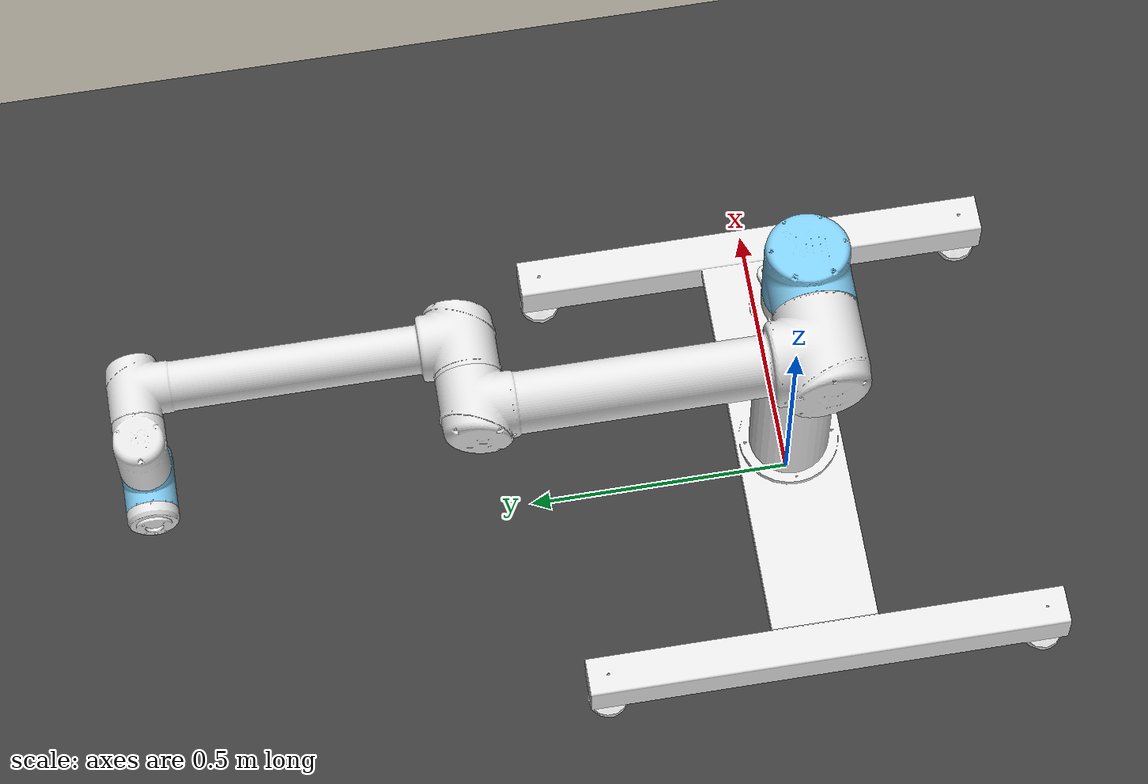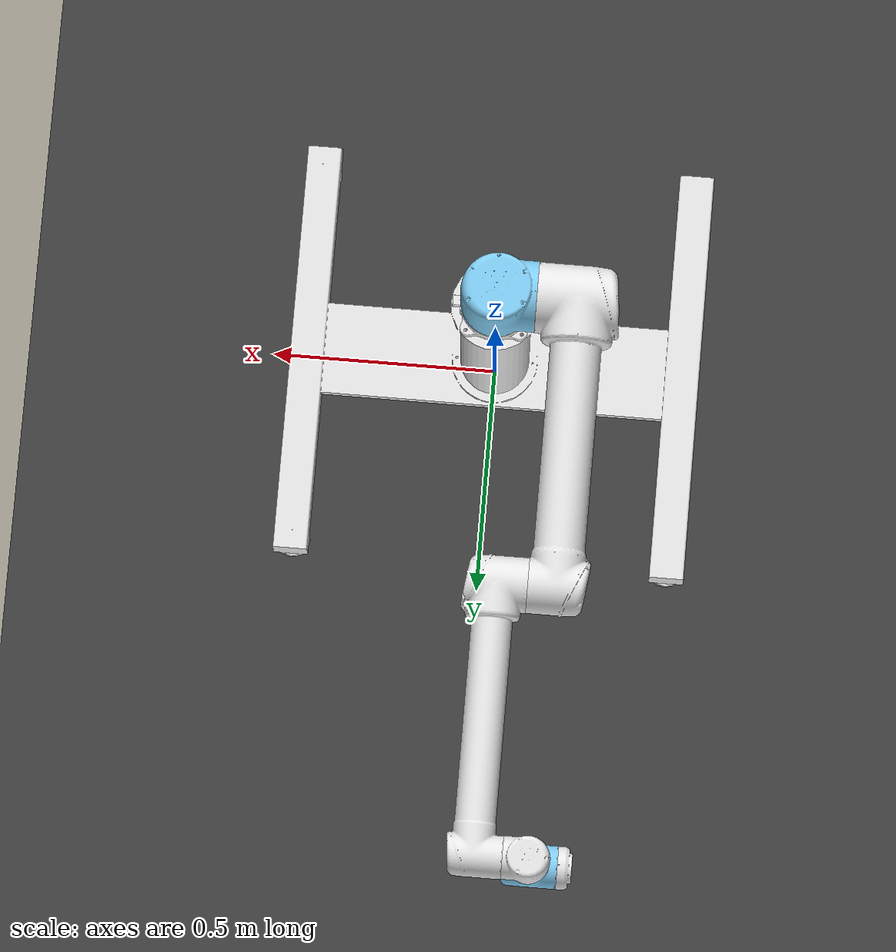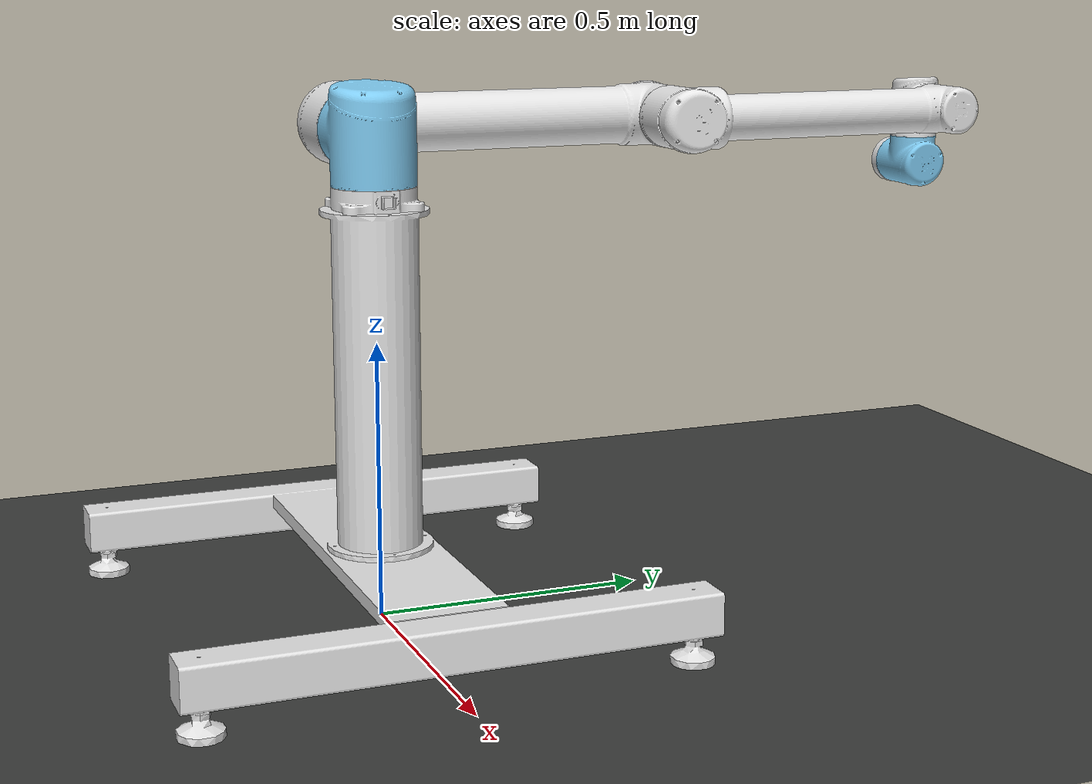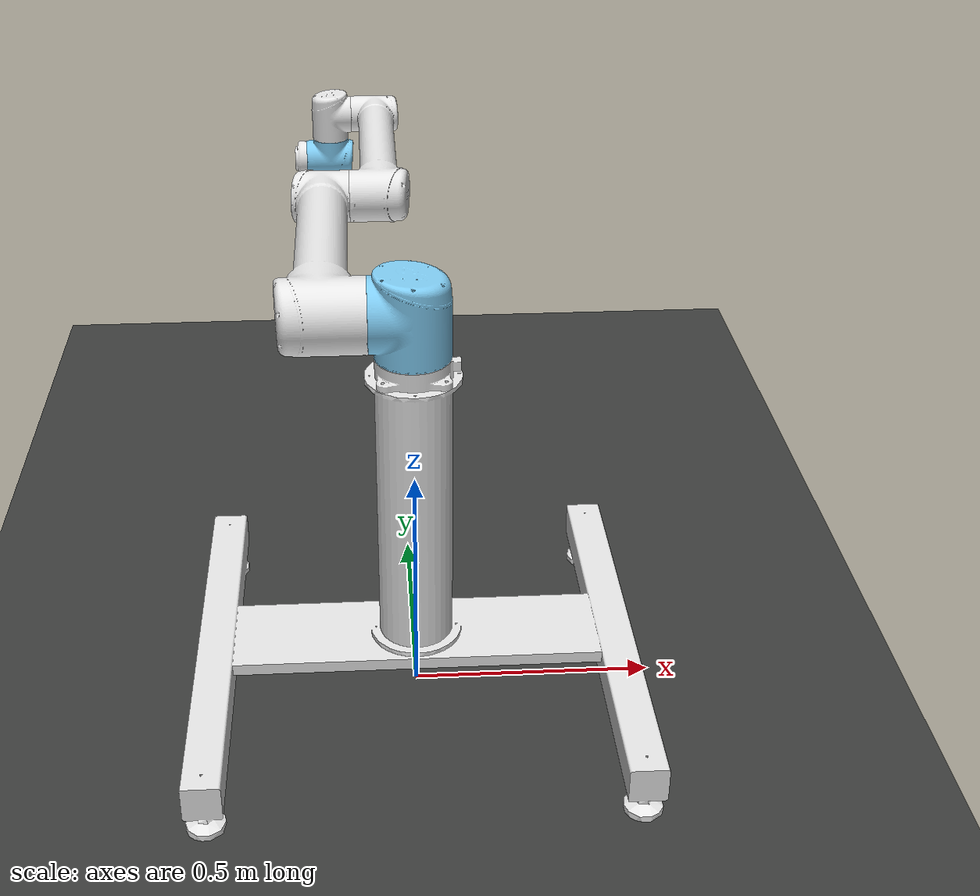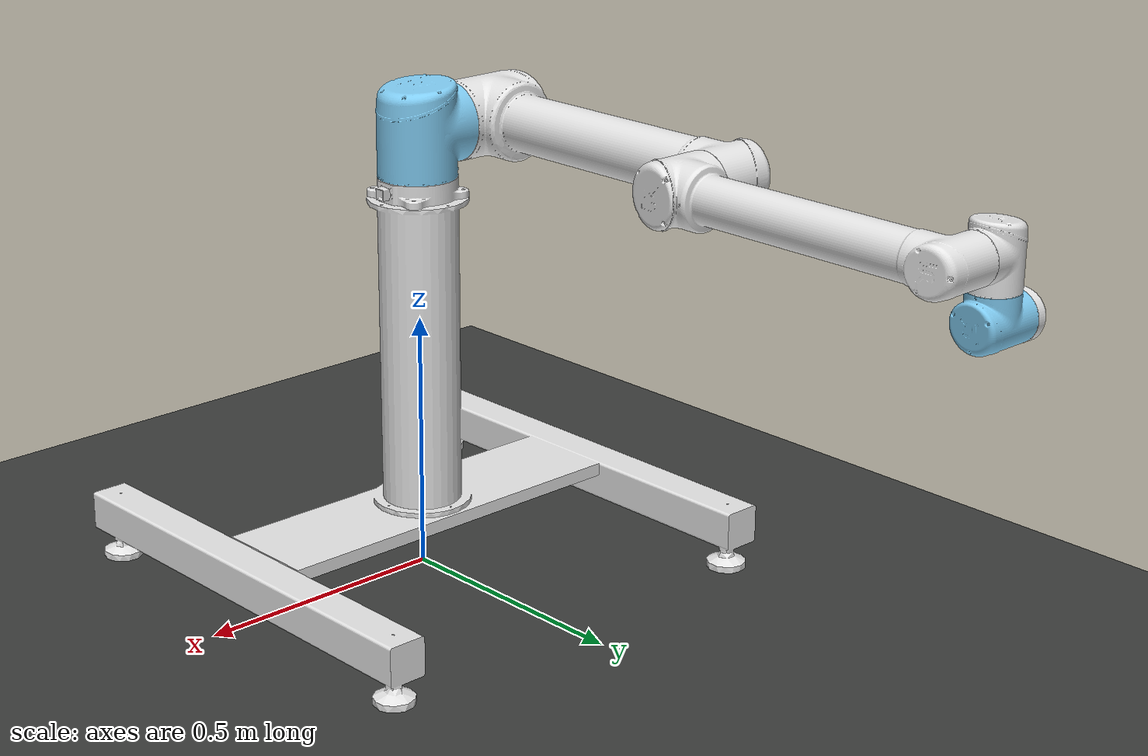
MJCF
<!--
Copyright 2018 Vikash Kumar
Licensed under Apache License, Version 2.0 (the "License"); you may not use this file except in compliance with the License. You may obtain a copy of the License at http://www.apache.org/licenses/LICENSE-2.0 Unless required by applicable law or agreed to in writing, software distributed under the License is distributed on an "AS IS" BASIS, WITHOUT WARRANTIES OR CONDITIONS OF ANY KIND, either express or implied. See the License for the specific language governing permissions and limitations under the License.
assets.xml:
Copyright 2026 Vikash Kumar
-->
<mujoco model="ur10">

    <include file="assets/assets.xml"/>

    <asset>
        <texture name="ur_groundplane" type="2d" builtin="checker" rgb1=".25 .26 .25"
          rgb2=".22 .22 .22" width="100" height="100" mark="none" markrgb=".8 .8 .8"/>
        <material name="ur_MatGnd" texture="ur_groundplane"  texrepeat="5 5" specular="1" shininess=".3" reflectance="0.00001"/>

        <mesh name="ur_pedestal" file="meshes/pedestal.stl" scale='.001 .001 .001'/>
    </asset>

    <worldbody>

				<light directional="false" cutoff="40" diffuse=".3 .3 .35" specular=".1 .1 .1" pos="1 .3 5" dir="-1 -.1 -5 "/>

				<!-- ======= Ground ======= -->
				<geom name="ground" type="plane" pos="0 0 0" material="ur_MatGnd" size="5 5 2" contype="1" conaffinity="1"/>
				<geom class="ur_viz" name='ur_pedestal' pos='0 0 0' type='mesh' mesh='ur_pedestal' euler='0 0 0'/>
				<frame euler="0 0 1.57" pos="0 0 .74">
						<include file="assets/chain.xml"/>
				</frame>
    </worldbody>

</mujoco>

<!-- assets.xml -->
<mujocoinclude>
    <compiler angle="radian"/>
    <size njmax="500" nconmax="100" />

    <visual>
        <map fogstart="1.5" fogend="4" force="0.1"/>
        <quality shadowsize="4096"/>
    </visual>

    <asset>
        <mesh name="ur_base" file="../../ur_sim/ur10/meshes/base.stl" />
        <mesh name="ur_shoulder" file="../../ur_sim/ur10/meshes/shoulder.stl" />
        <mesh name="ur_upperarm" file="../../ur_sim/ur10/meshes/upperarm.stl" />
        <mesh name="ur_forearm" file="../../ur_sim/ur10/meshes/forearm.stl" />
        <mesh name="ur_wrist1" file="../../ur_sim/ur10/meshes/wrist1.stl" />
        <mesh name="ur_wrist2" file="../../ur_sim/ur10/meshes/wrist2.stl" />
        <mesh name="ur_wrist3" file="../../ur_sim/ur10/meshes/wrist3.stl" />
        <mesh name="ur_simple_base" file="../../ur_sim/ur10/meshes/simple_base.stl" />
        <mesh name="ur_simple_shoulder" file="../../ur_sim/ur10/meshes/simple_shoulder.stl" />
        <mesh name="ur_simple_upperarm" file="../../ur_sim/ur10/meshes/simple_upperarm.stl" />
        <mesh name="ur_simple_forearm" file="../../ur_sim/ur10/meshes/simple_forearm.stl" />
        <mesh name="ur_simple_wrist1" file="../../ur_sim/ur10/meshes/simple_wrist1.stl" />
        <mesh name="ur_simple_wrist2" file="../../ur_sim/ur10/meshes/simple_wrist2.stl" />
        <mesh name="ur_simple_wrist3" file="../../ur_sim/ur10/meshes/simple_wrist3.stl" />

        <material name="ur_MatColl" specular="1" shininess=".3" reflectance="0.5" rgba=".4 .5 .6 1"/>
        <material name="ur_MatViz" specular="1" shininess=".1" reflectance="0.5" rgba=".9 .9 .9 1"/>
    </asset>

	<default>
        <default class="ur">
    		<joint limited="true" damping="50" armature=".001" margin="0.01" frictionloss="100"/>
            <general biastype="affine" ctrlrange="-6.2831 6.2831"/>
            <default class="ur_viz">
                <geom material="ur_MatViz" contype="0" conaffinity="0" group="1" type="mesh"/>
            </default>
            <default class="ur_coll">
                <geom material="ur_MatColl" contype="0" conaffinity="1" group="4" type="mesh"/>
            </default>
            <default class="ur10_base">
                <general gainprm="5000" biasprm="0 -5000 -500" forcerange="-330 330"/>
            </default>
            <default class="ur10_elbow">
                <general gainprm="1000" biasprm="0 -1000 -100" forcerange="-150 150"/>
            </default>
            <default class="ur10_wrist">
                <general gainprm="500" biasprm="0 -500 -100" forcerange="-56 56"/>
            </default>
        </default>
	</default>

    <actuator>
		<general class="ur10_base"  name="shoulder_pan"  joint="shoulder_pan_joint"/>
		<general class="ur10_base"  name="shoulder_lift" joint="shoulder_lift_joint"/>
		<general class="ur10_elbow" name="elbow"         joint="elbow_joint"/>
		<general class="ur10_wrist" name="wrist_1"       joint="wrist_1_joint"/>
		<general class="ur10_wrist" name="wrist_2"       joint="wrist_2_joint"/>
		<general class="ur10_wrist" name="wrist_3"       joint="wrist_3_joint"/>
	</actuator>

    <sensor>
        <jointpos joint="shoulder_pan_joint"     name="shoulder_pan_pos"/>
        <jointpos joint="shoulder_lift_joint"    name="shoulder_lift_pos"/>
        <jointpos joint="elbow_joint"            name="elbow_pos"/>
        <jointpos joint="wrist_1_joint"          name="wrist_1_pos"/>
        <jointpos joint="wrist_2_joint"          name="wrist_2_pos"/>
        <jointpos joint="wrist_3_joint"          name="wrist_3_pos"/>
    </sensor>

</mujocoinclude>

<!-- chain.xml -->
<mujocoinclude>

<body name="base_link" euler="0 0 0" pos="0 0 0" childclass="ur">
    <inertial pos="0 0 0" quat="0.5 0.5 -0.5 0.5" mass="4" diaginertia="0.01125 0.00610633 0.00610633"/>
    <geom class="ur_viz" mesh="ur_base"/>
    <geom class="ur_coll" mesh="ur_simple_base"/>
    <body name="shoulder_link" pos="0 0 0.1273">
        <inertial pos="0 0 0" mass="7.778" diaginertia="0.0314743 0.0314743 0.0218756"/>
        <joint name="shoulder_pan_joint" pos="0 0 0" axis="0 0 1" limited="true" range="-6.28319 6.28319"/>
        <geom class="ur_viz" mesh="ur_shoulder" rgba=".5 .8 .95 1"/>
        <geom class="ur_coll" mesh="ur_simple_shoulder"/>
        <body name="upper_arm_link" pos="0 0.220941 0" quat="0.707107 0 0.707107 0">
            <inertial pos="0 0 0.306" mass="12.93" diaginertia="0.421754 0.421754 0.0363656"/>
            <joint name="shoulder_lift_joint" pos="0 0 0" axis="0 1 0" limited="true" range="-6.28319 6.28319"/>
            <geom class="ur_viz" mesh="ur_upperarm"/>
            <geom class="ur_coll" mesh="ur_simple_upperarm"/>
            <body name="forearm_link" pos="0 -0.1719 0.612">
                <inertial pos="0 0 0.28615" mass="3.87" diaginertia="0.11107 0.11107 0.0108844"/>
                <joint name="elbow_joint" pos="0 0 0" axis="0 1 0" limited="true" range="-6.28319 6.28319"/>
                <geom class="ur_viz" mesh="ur_forearm"/>
                <geom class="ur_coll" mesh="ur_simple_forearm"/>
                <body name="wrist_1_link" pos="0 0 0.5723" quat="0.707107 0 0.707107 0">
                    <inertial pos="0 0 0" quat="0.5 0.5 -0.5 0.5" mass="1.96" diaginertia="0.0055125 0.00510825 0.00510825"/>
                    <joint name="wrist_1_joint" pos="0 0 0" axis="0 1 0" limited="true" range="-6.28319 6.28319"/>
                    <geom class="ur_viz" mesh="ur_wrist1"/>
                    <geom class="ur_coll" mesh="ur_simple_wrist1"/>
                    <body name="wrist_2_link" pos="0 0.1149 0">
                        <inertial pos="0 0 0" quat="0.5 0.5 -0.5 0.5" mass="1.96" diaginertia="0.0055125 0.00510825 0.00510825"/>
                        <joint name="wrist_2_joint" pos="0 0 0" axis="0 0 1" limited="true" range="-6.28319 6.28319"/>
                        <geom class="ur_viz" mesh="ur_wrist2" rgba=".5 .8 .95 1"/>
                        <geom class="ur_coll" mesh="ur_simple_wrist2"/>
                        <body name="wrist_3_link" pos="0 0 0.1157">
                            <inertial pos="0 0 0" quat="0.5 0.5 -0.5 0.5" mass="0.202" diaginertia="0.000568125 0.000526462 0.000526462"/>
                            <joint name="wrist_3_joint" pos="0 0 0" axis="0 1 0" limited="true" range="-6.28319 6.28319"/>
                            <geom class="ur_viz" mesh="ur_wrist3"/>
                            <geom class="ur_coll" mesh="ur_simple_wrist3"/>
                        </body>
                    </body>
                </body>
            </body>
        </body>
    </body>
</body>
</mujocoinclude>
